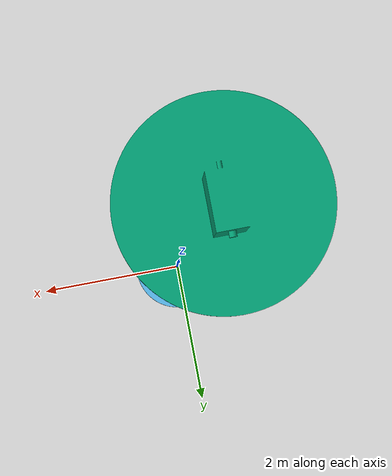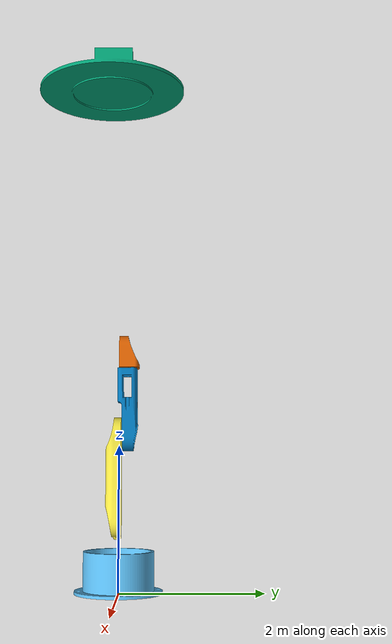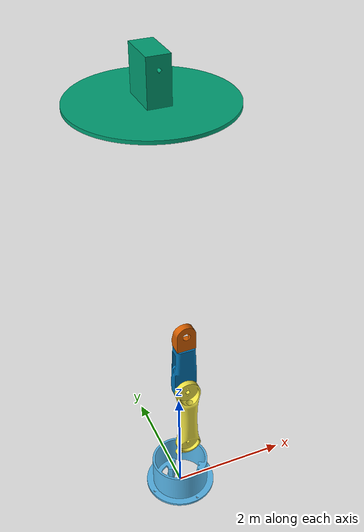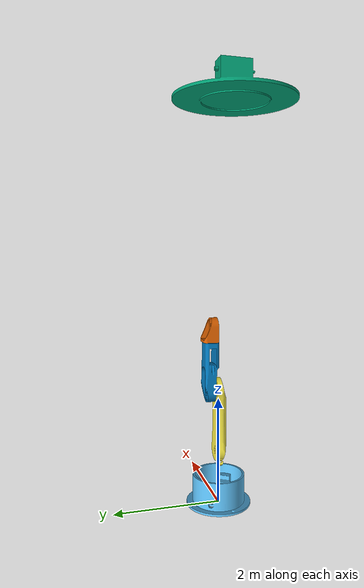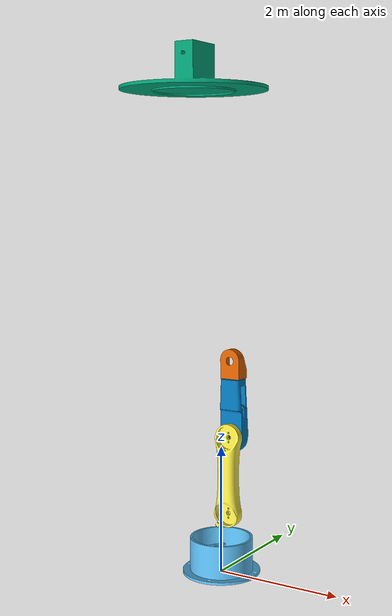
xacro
<?xml version="1.0" ?>
<robot name="Robotic" xmlns:xacro="http://www.ros.org/wiki/xacro">

  <link name="world"/>

  <link name="base_link">
    <visual>
      <origin xyz="0 0 0" rpy="0 0 0"/>
      <geometry>
        <mesh filename="package://roboticarm_description/meshes/base_link.stl" scale="0.01 0.01 0.01"/>
      </geometry>
    </visual>
  </link>

  <joint name="base_joint" type="fixed">
    <parent link="world"/>
    <child link="base_link"/>
    <origin xyz="0 0 0" rpy="0 0 0"/>
  </joint>

  <link name="waist_link">
    <visual>
      <origin xyz="0 0 0" rpy="0 0 0"/>
      <geometry>
        <mesh filename="package://roboticarm_description/meshes/Waist_1.stl" scale="0.01 0.01 0.01"/>
      </geometry>
    </visual>
  </link>

  <joint name="waist_joint" type="revolute">
    <parent link="base_link"/>
    <child link="waist_link"/>
    <origin xyz="0 0 0" rpy="0 0 0"/>
    <axis xyz="0 0 1"/>
    <limit lower="-3.14" upper="3.14" effort="100" velocity="1"/>
  </joint>

  <link name="arm_1_link">
    <visual>
      <origin xyz="0 0 0" rpy="0 0 0"/>
      <geometry>
        <mesh filename="package://roboticarm_description/meshes/Arm01_1.stl" scale="0.01 0.01 0.01"/>
      </geometry>
    </visual>
  </link>

  <joint name="arm_1_joint" type="revolute">
    <parent link="waist_link"/>
    <child link="arm_1_link"/>
    <origin xyz="0 0 0" rpy="0 0 0"/>
    <axis xyz="0 1 0"/>
    <limit lower="-3.14" upper="3.14" effort="100" velocity="1"/>
  </joint>

  <link name="arm_2_link">
    <visual>
      <origin xyz="0 0 0" rpy="0 0 0"/>
      <geometry>
        <mesh filename="package://roboticarm_description/meshes/Arm02_1.stl" scale="0.01 0.01 0.01"/>
      </geometry>
    </visual>
  </link>

  <joint name="arm_2_joint" type="revolute">
    <parent link="arm_1_link"/>
    <child link="arm_2_link"/>
    <origin xyz="0 0 0" rpy="0 0 0"/>
    <axis xyz="0 1 0"/>
    <limit lower="-3.14" upper="3.14" effort="100" velocity="1"/>
  </joint>

  <link name="arm_3_link">
    <visual>
      <origin xyz="0 0 0" rpy="0 0 0"/>
      <geometry>
        <mesh filename="package://roboticarm_description/meshes/Arm03_1.stl" scale="0.01 0.01 0.01"/>
      </geometry>
    </visual>
  </link>

  <joint name="arm_3_joint" type="revolute">
    <parent link="arm_2_link"/>
    <child link="arm_3_link"/>
    <origin xyz="0 0 0" rpy="0 0 0"/>
    <axis xyz="0 1 0"/>
    <limit lower="-3.14" upper="3.14" effort="100" velocity="1"/>
  </joint>

</robot>
